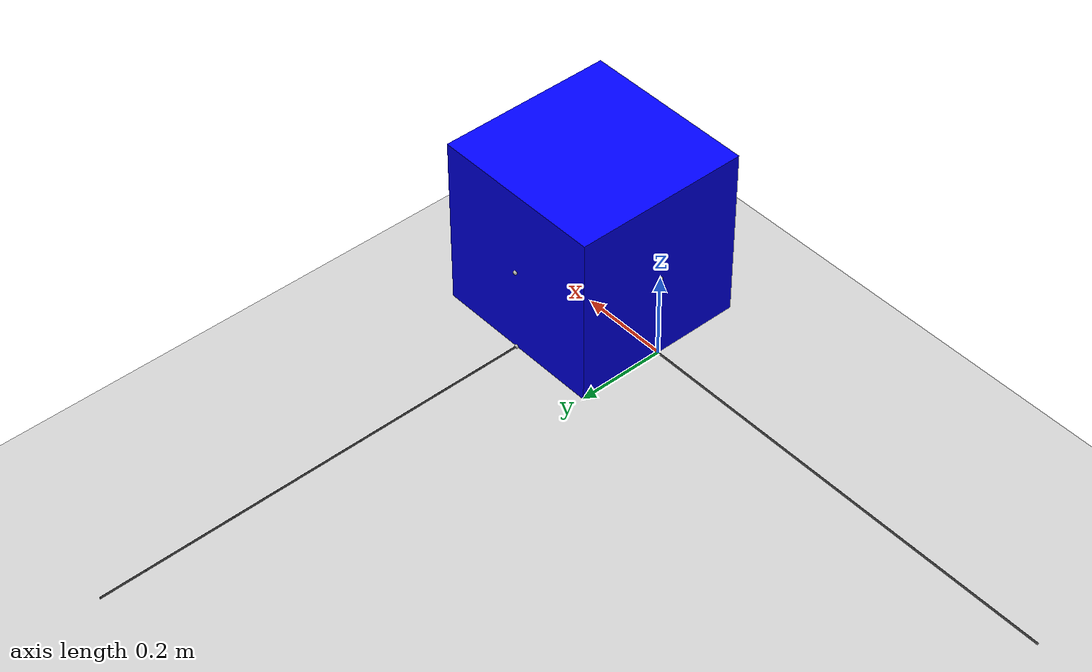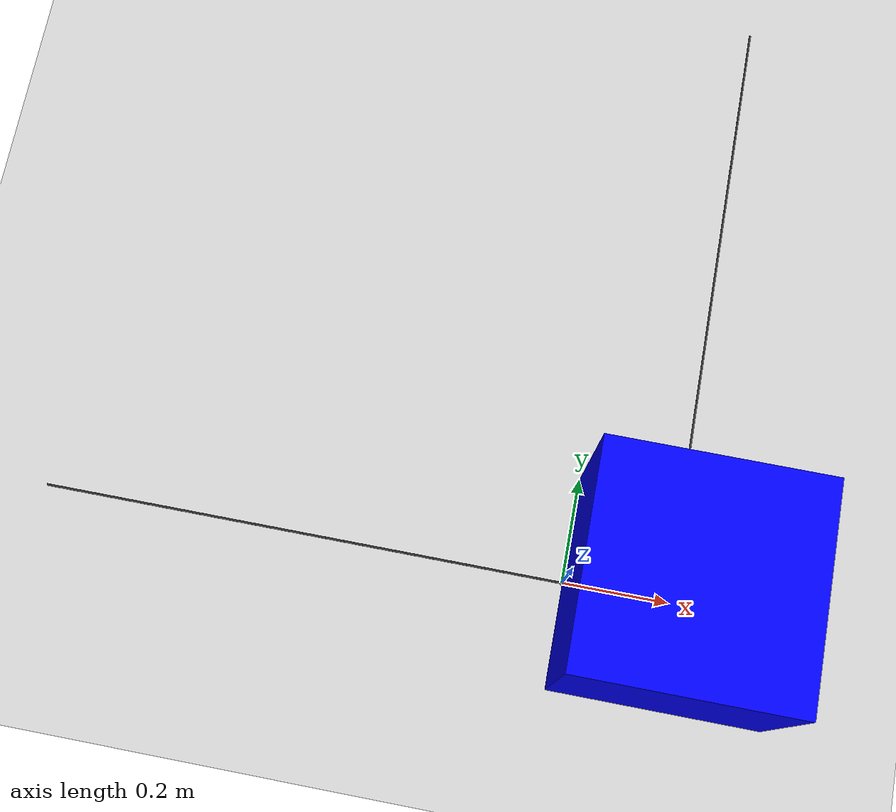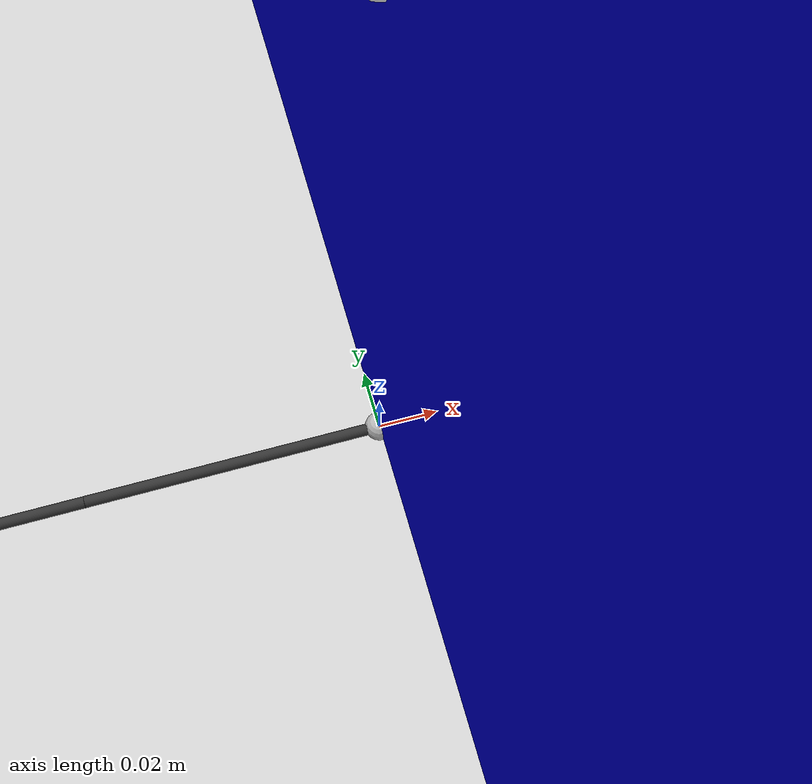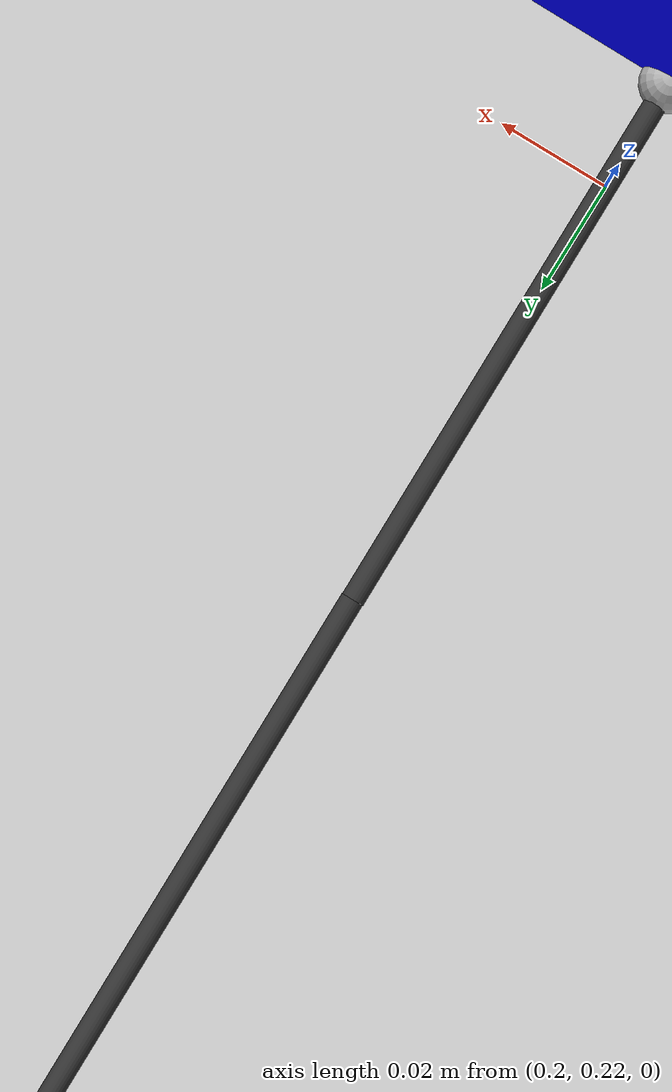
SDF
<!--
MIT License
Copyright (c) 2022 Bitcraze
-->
<sdf version="1.6">
 <world name="crazyflie_world">
  <physics name="1ms" type="ignored">
   <max_step_size>0.0005</max_step_size>
   <real_time_factor>1.0</real_time_factor>
  </physics>
  <plugin filename="gz-sim-physics-system" name="gz::sim::systems::Physics"/>
  <plugin filename="gz-sim-user-commands-system" name="gz::sim::systems::UserCommands"/>
  <plugin filename="gz-sim-scene-broadcaster-system" name="gz::sim::systems::SceneBroadcaster"/>
  <plugin filename="gz-sim-sensors-system" name="gz::sim::systems::Sensors">
   <render_engine>ogre2</render_engine>
  </plugin>
  <light type="directional" name="sun">
   <pose>0 0 10 0 0 0</pose>
   <diffuse>0.8 0.8 0.8 1</diffuse>
   <specular>0.2 0.2 0.2 1</specular>
   <attenuation>
    <range>1000</range>
    <constant>0.9</constant>
    <linear>0.01</linear>
    <quadratic>0.001</quadratic>
   </attenuation>
   <direction>-0.5 0.1 -0.9</direction>
  </light>
  <model name="ground_plane">
   <static>true</static>
   <link name="link">
    <collision name="collision">
     <geometry><plane><normal>0 0 1</normal><size>100 100</size></plane></geometry>
    </collision>
    <visual name="visual">
     <geometry><plane><normal>0 0 1</normal><size>100 100</size></plane></geometry>
     <material>
      <ambient>0.8 0.8 0.8 1</ambient>
      <diffuse>0.8 0.8 0.8 1</diffuse>
      <specular>0.8 0.8 0.8 1</specular>
     </material>
    </visual>
   </link>
  </model>
  <include><uri>model://load_large</uri><name>the_load</name><pose>0.2 0 0 0 0 0</pose></include>
  <include><uri>model://segment_small</uri><name>segment_1</name><pose>-0.95 0 0 0 0 0</pose></include>
  <joint name="drone_to_cable_01" type="ball">
   <pose relative_to="crazyflie_01::hook_link">0 0 0 0 0 0</pose>
   <parent>segment_1::segment_start</parent>
   <child>crazyflie_01::hook_link</child>
   <axis><xyz>0 1 0</xyz></axis>
  </joint>
  <include><uri>model://segment_small</uri><name>segment_2</name><pose>-0.85 0 0 0 0 0</pose></include>
  <joint name="segment_1_to_2" type="ball">
   <pose relative_to="segment_1::segment_end">0 0 0 0 0 0</pose>
   <parent>segment_2::segment_start</parent>
   <child>segment_1::segment_end</child>
   <axis><xyz>0 1 0</xyz></axis>
  </joint>
  <include><uri>model://segment_small</uri><name>segment_3</name><pose>-0.75 0 0 0 0 0</pose></include>
  <joint name="segment_2_to_3" type="ball">
   <pose relative_to="segment_2::segment_end">0 0 0 0 0 0</pose>
   <parent>segment_3::segment_start</parent>
   <child>segment_2::segment_end</child>
   <axis><xyz>0 1 0</xyz></axis>
  </joint>
  <include><uri>model://segment_small</uri><name>segment_4</name><pose>-0.65 0 0 0 0 0</pose></include>
  <joint name="segment_3_to_4" type="ball">
   <pose relative_to="segment_3::segment_end">0 0 0 0 0 0</pose>
   <parent>segment_4::segment_start</parent>
   <child>segment_3::segment_end</child>
   <axis><xyz>0 1 0</xyz></axis>
  </joint>
  <include><uri>model://segment_small</uri><name>segment_5</name><pose>-0.55 0 0 0 0 0</pose></include>
  <joint name="segment_4_to_5" type="ball">
   <pose relative_to="segment_4::segment_end">0 0 0 0 0 0</pose>
   <parent>segment_5::segment_start</parent>
   <child>segment_4::segment_end</child>
   <axis><xyz>0 1 0</xyz></axis>
  </joint>
  <include><uri>model://segment_small</uri><name>segment_6</name><pose>-0.45 0 0 0 0 0</pose></include>
  <joint name="segment_5_to_6" type="ball">
   <pose relative_to="segment_5::segment_end">0 0 0 0 0 0</pose>
   <parent>segment_6::segment_start</parent>
   <child>segment_5::segment_end</child>
   <axis><xyz>0 1 0</xyz></axis>
  </joint>
  <include><uri>model://segment_small</uri><name>segment_7</name><pose>-0.35 0 0 0 0 0</pose></include>
  <joint name="segment_6_to_7" type="ball">
   <pose relative_to="segment_6::segment_end">0 0 0 0 0 0</pose>
   <parent>segment_7::segment_start</parent>
   <child>segment_6::segment_end</child>
   <axis><xyz>0 1 0</xyz></axis>
  </joint>
  <include><uri>model://segment_small</uri><name>segment_8</name><pose>-0.25 0 0 0 0 0</pose></include>
  <joint name="segment_7_to_8" type="ball">
   <pose relative_to="segment_7::segment_end">0 0 0 0 0 0</pose>
   <parent>segment_8::segment_start</parent>
   <child>segment_7::segment_end</child>
   <axis><xyz>0 1 0</xyz></axis>
  </joint>
  <include><uri>model://segment_small</uri><name>segment_9</name><pose>-0.15 0 0 0 0 0</pose></include>
  <joint name="segment_8_to_9" type="ball">
   <pose relative_to="segment_8::segment_end">0 0 0 0 0 0</pose>
   <parent>segment_9::segment_start</parent>
   <child>segment_8::segment_end</child>
   <axis><xyz>0 1 0</xyz></axis>
  </joint>
  <include><uri>model://segment_small</uri><name>segment_10</name><pose>-0.05 0 0 0 0 0</pose></include>
  <joint name="segment_9_to_10" type="ball">
   <pose relative_to="segment_9::segment_end">0 0 0 0 0 0</pose>
   <parent>segment_10::segment_start</parent>
   <child>segment_9::segment_end</child>
   <axis><xyz>0 1 0</xyz></axis>
  </joint>
  <joint name="cable_10_to_load" type="ball">
   <pose relative_to="segment_10::segment_end">0 0 0 0 0 0</pose>
   <parent>the_load::x_hook</parent>
   <child>segment_10::segment_end</child>
   <axis><xyz>0 1 0</xyz></axis>
  </joint>
  <include><uri>model://segment_small</uri><name>segment2_1</name><pose>0.2 1.15 0 0 0 -1.57</pose></include>
  <joint name="drone2_to_cable_01" type="ball">
   <pose relative_to="crazyflie_02::hook_link">0 0 0 0 0 0</pose>
   <parent>segment2_1::segment_start</parent>
   <child>crazyflie_02::hook_link</child>
   <axis><xyz>0 1 0</xyz></axis>
  </joint>
  <include><uri>model://segment_small</uri><name>segment2_2</name><pose>0.2 1.05 0 0 0 -1.57</pose></include>
  <joint name="segment2_1_to_2" type="ball">
   <pose relative_to="segment2_1::segment_end">0 0 0 0 0 0</pose>
   <parent>segment2_2::segment_start</parent>
   <child>segment2_1::segment_end</child>
   <axis><xyz>0 1 0</xyz></axis>
  </joint>
  <include><uri>model://segment_small</uri><name>segment2_3</name><pose>0.2 0.95 0 0 0 -1.57</pose></include>
  <joint name="segment2_2_to_3" type="ball">
   <pose relative_to="segment2_2::segment_end">0 0 0 0 0 0</pose>
   <parent>segment2_3::segment_start</parent>
   <child>segment2_2::segment_end</child>
   <axis><xyz>0 1 0</xyz></axis>
  </joint>
  <include><uri>model://segment_small</uri><name>segment2_4</name><pose>0.2 0.85 0 0 0 -1.57</pose></include>
  <joint name="segment2_3_to_4" type="ball">
   <pose relative_to="segment2_3::segment_end">0 0 0 0 0 0</pose>
   <parent>segment2_4::segment_start</parent>
   <child>segment2_3::segment_end</child>
   <axis><xyz>0 1 0</xyz></axis>
  </joint>
  <include><uri>model://segment_small</uri><name>segment2_5</name><pose>0.2 0.75 0 0 0 -1.57</pose></include>
  <joint name="segment2_4_to_5" type="ball">
   <pose relative_to="segment2_4::segment_end">0 0 0 0 0 0</pose>
   <parent>segment2_5::segment_start</parent>
   <child>segment2_4::segment_end</child>
   <axis><xyz>0 1 0</xyz></axis>
  </joint>
  <include><uri>model://segment_small</uri><name>segment2_6</name><pose>0.2 0.65 0 0 0 -1.57</pose></include>
  <joint name="segment2_5_to_6" type="ball">
   <pose relative_to="segment2_5::segment_end">0 0 0 0 0 0</pose>
   <parent>segment2_6::segment_start</parent>
   <child>segment2_5::segment_end</child>
   <axis><xyz>0 1 0</xyz></axis>
  </joint>
  <include><uri>model://segment_small</uri><name>segment2_7</name><pose>0.2 0.55 0 0 0 -1.57</pose></include>
  <joint name="segment2_6_to_7" type="ball">
   <pose relative_to="segment2_6::segment_end">0 0 0 0 0 0</pose>
   <parent>segment2_7::segment_start</parent>
   <child>segment2_6::segment_end</child>
   <axis><xyz>0 1 0</xyz></axis>
  </joint>
  <include><uri>model://segment_small</uri><name>segment2_8</name><pose>0.2 0.45 0 0 0 -1.57</pose></include>
  <joint name="segment2_7_to_8" type="ball">
   <pose relative_to="segment2_7::segment_end">0 0 0 0 0 0</pose>
   <parent>segment2_8::segment_start</parent>
   <child>segment2_7::segment_end</child>
   <axis><xyz>0 1 0</xyz></axis>
  </joint>
  <include><uri>model://segment_small</uri><name>segment2_9</name><pose>0.2 0.35 0 0 0 -1.57</pose></include>
  <joint name="segment2_8_to_9" type="ball">
   <pose relative_to="segment2_8::segment_end">0 0 0 0 0 0</pose>
   <parent>segment2_9::segment_start</parent>
   <child>segment2_8::segment_end</child>
   <axis><xyz>0 1 0</xyz></axis>
  </joint>
  <include><uri>model://segment_small</uri><name>segment2_10</name><pose>0.2 0.25 0 0 0 -1.57</pose></include>
  <joint name="segment2_9_to_10" type="ball">
   <pose relative_to="segment2_9::segment_end">0 0 0 0 0 0</pose>
   <parent>segment2_10::segment_start</parent>
   <child>segment2_9::segment_end</child>
   <axis><xyz>0 1 0</xyz></axis>
  </joint>
  <joint name="cable2_10_to_load" type="ball">
   <pose relative_to="segment2_10::segment_end">0 0 0 0 0 0</pose>
   <parent>the_load::y_hook</parent>
   <child>segment2_10::segment_end</child>
   <axis><xyz>0 1 0</xyz></axis>
  </joint>
 </world>
</sdf>

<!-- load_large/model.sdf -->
<sdf version="1.8">
<model name="load_large">
  <link name="box_body">
    <pose>0 0 0.2 0 0 0</pose>
      <inertial> <!--inertial properties of the link mass, inertia matix-->
        <mass>0.015</mass>
        <inertia>
          <ixx>0.000399</ixx>
          <ixy>0</ixy>
          <ixz>0</ixz>
          <iyy>0.000399</iyy>
          <iyz>0</iyz>
          <izz>0.000399</izz>
        </inertia>
      </inertial>
      <visual name='visual'>
        <geometry>
          <box>
            <size>0.4 0.4 0.4</size>
          </box>
        </geometry>
          <!--let's add color to our link-->
          <material>
            <ambient>0.0 0.0 1.0 1</ambient>
            <diffuse>0.0 0.0 1.0 1</diffuse>
            <specular>0.0 0.0 1.0 1</specular>
          </material>
      </visual>
      <collision name='collision'>
        <geometry>
          <box>
            <size>0.4 0.4 0.4</size>
          </box>
        </geometry>
        <surface>
          <friction>
            <ode>
              <mu> 0.3 </mu>
            </ode>
          </friction>
        </surface>
      </collision>
    </link>
  <link name="x_hook">
    <pose>-0.2 0 0 0 0 0</pose>
    <inertial>
      <mass>0.00001</mass>
        <inertia>
          <ixx>1e-9</ixx>
          <ixy>0</ixy>
          <ixz>0</ixz>
          <iyy>1e-9</iyy>
          <iyz>0</iyz>
          <izz>1e-9</izz>
        </inertia>
    </inertial>
    <visual name="hook_visual"><geometry><sphere><radius>0.005</radius></sphere></geometry></visual>
    <collision name="hook_collision"><geometry><sphere><radius>0.005</radius></sphere></geometry></collision>
  </link>
  <joint name="box_to_hook_x_joint" type="fixed">
    <parent>box_body</parent>
    <child>x_hook</child>
  </joint>

  <link name="x_middle_hook">
    <pose>-0.2 0 0.2 0 0 0</pose>
    <inertial>
      <mass>0.00001</mass>
        <inertia>
          <ixx>1e-9</ixx>
          <ixy>0</ixy>
          <ixz>0</ixz>
          <iyy>1e-9</iyy>
          <iyz>0</iyz>
          <izz>1e-9</izz>
        </inertia>
    </inertial>
    <visual name="hook_visual"><geometry><sphere><radius>0.005</radius></sphere></geometry></visual>
    <collision name="hook_collision"><geometry><sphere><radius>0.005</radius></sphere></geometry></collision>
  </link>
  <joint name="box_to_middle_hook_x_joint" type="fixed">
    <parent>box_body</parent>
    <child>x_middle_hook</child>
  </joint>

  <link name="x_middle_detacheable_hook">
    <pose>-0.2 0 0.2 0 0 0</pose>
    <inertial>
      <mass>0.00001</mass>
        <inertia>
          <ixx>1e-9</ixx>
          <ixy>0</ixy>
          <ixz>0</ixz>
          <iyy>1e-9</iyy>
          <iyz>0</iyz>
          <izz>1e-9</izz>
        </inertia>
    </inertial>
    <visual name="hook_visual"><geometry><sphere><radius>0.005</radius></sphere></geometry></visual>
    <collision name="hook_collision"><geometry><sphere><radius>0.005</radius></sphere></geometry></collision>
  </link>
  <plugin filename="gz-sim-detachable-joint-system" name="gz::sim::systems::DetachableJoint">
       <parent_link>box_body</parent_link>
       <child_model>__model__</child_model>
       <joint_name>detached_joint </joint_name>
       <child_link>x_middle_detacheable_hook</child_link>
       <detach_topic>/load/detach</detach_topic>
  </plugin>

  <link name="y_hook">
    <pose>0 0.2 0 0 0 0</pose>
    <inertial>
      <mass>0.00001</mass>
        <inertia>
          <ixx>1e-9</ixx>
          <ixy>0</ixy>
          <ixz>0</ixz>
          <iyy>1e-9</iyy>
          <iyz>0</iyz>
          <izz>1e-9</izz>
        </inertia>
    </inertial>
    <visual name="hook_visual"><geometry><sphere><radius>0.005</radius></sphere></geometry></visual>
    <collision name="hook_collision"><geometry><sphere><radius>0.005</radius></sphere></geometry></collision>
  </link>
  <joint name="box_to_hook_y_joint" type="fixed">
    <parent>box_body</parent>
    <child>y_hook</child>
  </joint>

  <link name="y_middle_hook">
    <pose>0 0.2 0.2 0 0 0</pose>
    <inertial>
      <mass>0.00001</mass>
        <inertia>
          <ixx>1e-9</ixx>
          <ixy>0</ixy>
          <ixz>0</ixz>
          <iyy>1e-9</iyy>
          <iyz>0</iyz>
          <izz>1e-9</izz>
        </inertia>
    </inertial>
    <visual name="hook_visual"><geometry><sphere><radius>0.005</radius></sphere></geometry></visual>
    <collision name="hook_collision"><geometry><sphere><radius>0.005</radius></sphere></geometry></collision>
  </link>
  <joint name="box_to_middle_hook_y_joint" type="fixed">
    <parent>box_body</parent>
    <child>y_middle_hook</child>
  </joint>

  <plugin
      filename="gz-sim-odometry-publisher-system"
      name="gz::sim::systems::OdometryPublisher">
      <odom_frame>odom</odom_frame>
      <dimensions>3</dimensions>
    </plugin>
</model>
</sdf>

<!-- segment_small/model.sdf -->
<sdf version="1.8">
  <model name="small_segment">
    <link name="segment_link">
      <inertial>
        <mass>0.00001</mass>
        <pose>0 0 0 0 1.5708 0</pose>
        <inertia>
            <ixx>1e-9</ixx>
            <iyy>1e-9</iyy>
            <izz>1e-9</izz>
        </inertia>
      </inertial>
      <visual name="segment_visual">
        <pose>0 0 0 0 1.5708 0</pose>
        <geometry>
          <cylinder>
            <radius>0.002</radius>
            <length>0.1</length> </cylinder>
        </geometry>
        <material>
          <ambient>0.2 0.2 0.2 1</ambient>
          <diffuse>0.2 0.2 0.2 1</diffuse>
          <specular>0.0 0.0 0.0 1</specular>
          <emissive>0.0 0.0 0.0 1</emissive>
        </material>
      </visual>
      <collision name="segment_collision">
        <pose>0 0 0 0 1.5708 0</pose>
        <geometry>
          <cylinder>
            <radius>0.002</radius>
            <length>0.1</length>
          </cylinder>
        </geometry>
      </collision>
    </link>
    <link name="segment_start">
        <pose>-0.05 0 0 0 0 0</pose>
        <inertial>
          <mass>1e-9</mass>
          <inertia>
            <ixx>1e-9</ixx>
            <iyy>1e-9</iyy>
            <izz>1e-9</izz>
        </inertia>
        </inertial>
        <visual name="start_visual"><geometry><sphere><radius>0.001</radius></sphere></geometry></visual>
        <collision name="start_collision"><geometry><sphere><radius>0.001</radius></sphere></geometry></collision>
    </link>
    <joint name="start_joint" type="fixed">
        <parent>segment_link</parent>
        <child>segment_start</child>
    </joint>
    <link name="segment_end">
        <pose>0.05 0 0 0 0 0</pose>
        <inertial>
          <mass>1e-9</mass>
          <inertia>
            <ixx>1e-9</ixx>
            <iyy>1e-9</iyy>
            <izz>1e-9</izz>
        </inertia>
        </inertial>
        <visual name="end_visual"><geometry><sphere><radius>0.001</radius></sphere></geometry></visual>
        <collision name="end_collision"><geometry><sphere><radius>0.001</radius></sphere></geometry></collision>
    </link>
    <joint name="end_joint" type="fixed">
        <parent>segment_end</parent>
        <child>segment_link</child>
    </joint>
  </model>
</sdf>
